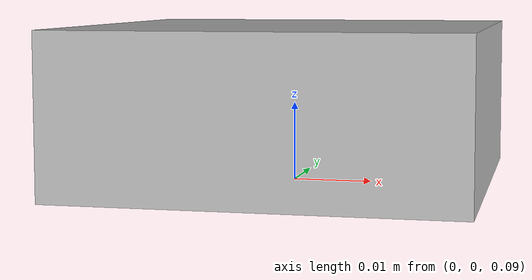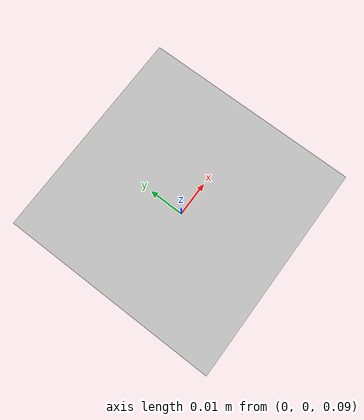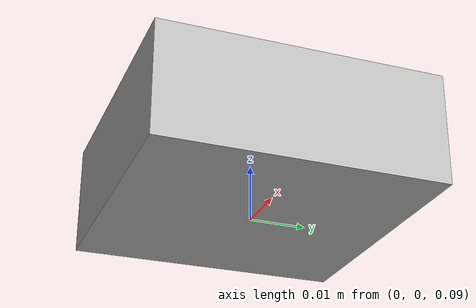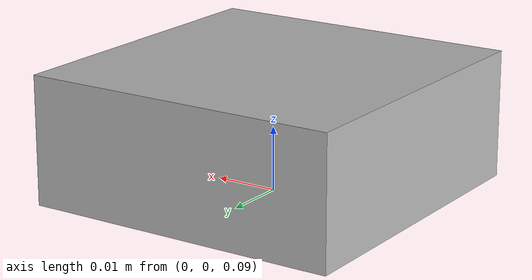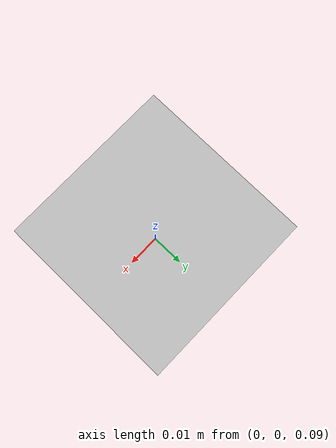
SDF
<?xml version="1.0" ?>
<sdf version="1.10">
  <model name="camera">
    <pose>0 0 0.1 0 1.57 0</pose>
    <link name="camera_link">
      <inertial>
        <pose>0.01 0.025 0.025 0 0 0</pose>
        <mass>0.01</mass>
        <inertia>
          <ixx>4.15e-6</ixx>
          <ixy>0</ixy>
          <ixz>0</ixz>
          <iyy>2.407e-6</iyy>
          <iyz>0</iyz>
          <izz>2.407e-6</izz>
        </inertia>
      </inertial>
      <visual name="visual">
        <geometry>
          <box>
            <size>0.02 0.05 0.05</size>
          </box>
        </geometry>
      </visual>

      <sensor name="camera" type="camera">
        <always_on>true</always_on>
        <update_rate>30.0</update_rate>
        <visualize>true</visualize>
		<topic>camera/image_raw</topic>
        <camera>
          <horizontal_fov>1.047</horizontal_fov>
          <image>
            <width>640</width>
            <height>480</height>
          </image>
		  <camera_info_topic>camera/camera_info</camera_info_topic>
          <clip>
            <near>0.1</near>
            <far>100</far>
          </clip>
          <noise>
            <type>gaussian</type>
            <mean>0.0</mean>
            <stddev>0.001</stddev>
          </noise>
        </camera>
      </sensor>
    </link>
  </model>
</sdf>
